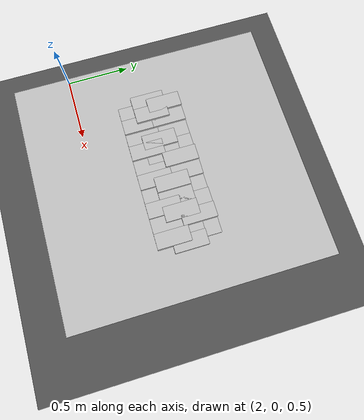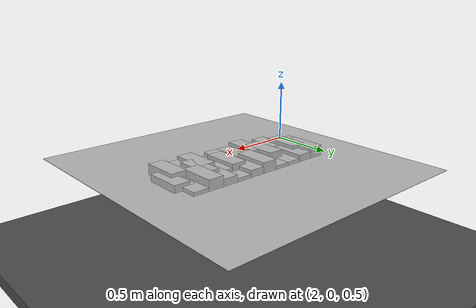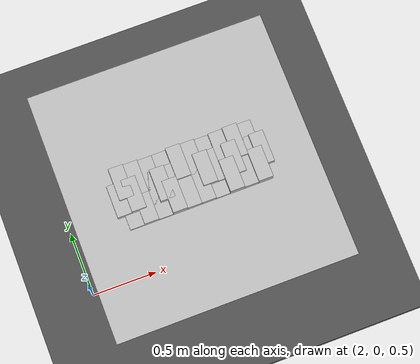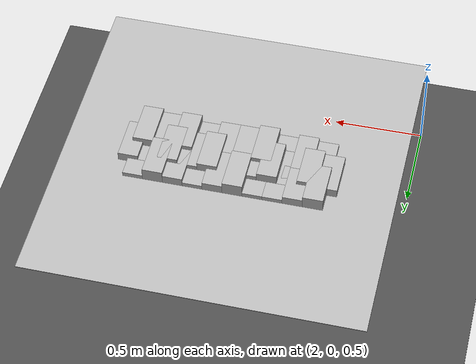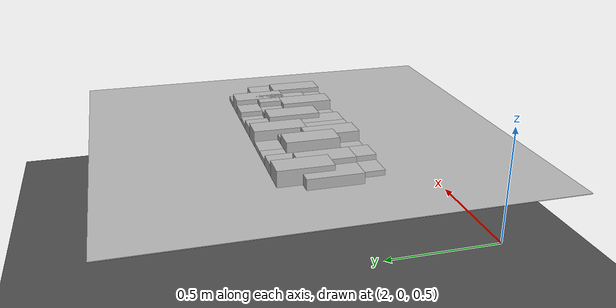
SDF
<sdf version="1.6">
 <world name="default">
  <model name="ground_plane">
   <static>1</static>
   <link name="link">
    <collision name="collision">
     <geometry><plane><normal>0 0 1</normal><size>100 100</size></plane></geometry>
     <surface><friction><ode><mu>100</mu><mu2>50</mu2></ode></friction></surface>
    </collision>
    <visual name="visual">
     <cast_shadows>0</cast_shadows>
     <geometry><plane><normal>0 0 1</normal><size>100 100</size></plane></geometry>
     <material>
      <script><uri>file://media/materials/scripts/gazebo.material</uri><name>Gazebo/Grey</name></script>
     </material>
    </visual>
   </link>
  </model>
  <model name="frc2016_roughterrain_0">
   <link name="link_clone_19">
    <pose>3.10114 0.551241 -0.073164 0 -0 0</pose>
    <inertial>
     <inertia><ixx>nan</ixx><ixy>0</ixy><ixz>0</ixz><iyy>nan</iyy><iyz>0</iyz><izz>nan</izz></inertia>
     <mass>0</mass>
    </inertial>
    <visual name="row1_block4_sm">
     <pose>0.17145 0.1143 0.09698 0 -0 0</pose>
     <geometry><box><size>0.115452 0.257474 0.0254</size></box></geometry>
     <material><shader type="pixel"/></material>
    </visual>
    <visual name="row1_block3_md">
     <pose>0.28575 0.1143 0.10968 0 -0 0</pose>
     <geometry><box><size>0.115452 0.257474 0.0508</size></box></geometry>
     <material><shader type="pixel"/></material>
    </visual>
    <visual name="row1_block5_md">
     <pose>0.05715 0.1143 0.10968 0 -0 0</pose>
     <geometry><box><size>0.115452 0.257474 0.0508</size></box></geometry>
     <material><shader type="pixel"/></material>
    </visual>
    <visual name="platform">
     <pose>0 0 0.08269 0 -0 0</pose>
     <geometry><box><size>1.91826 2.01688 0.003175</size></box></geometry>
     <material><shader type="pixel"/></material>
    </visual>
    <visual name="row1_block1_sm">
     <pose>0.51435 0.1143 0.09698 0 -0 0</pose>
     <geometry><box><size>0.115452 0.257474 0.0254</size></box></geometry>
     <material><shader type="pixel"/></material>
    </visual>
    <visual name="row1_block2_lg">
     <pose>0.40005 0.1143 0.12238 0 -0 0</pose>
     <geometry><box><size>0.115452 0.257474 0.0762</size></box></geometry>
     <material><shader type="pixel"/></material>
    </visual>
    <visual name="row1_block6_lg">
     <pose>-0.05715 0.1143 0.12238 0 -0 0</pose>
     <geometry><box><size>0.115452 0.257474 0.0762</size></box></geometry>
     <material><shader type="pixel"/></material>
    </visual>
    <visual name="row1_block7_sm">
     <pose>-0.17145 0.1143 0.09698 0 -0 0</pose>
     <geometry><box><size>0.115452 0.257474 0.0254</size></box></geometry>
     <material><shader type="pixel"/></material>
    </visual>
    <visual name="row1_block8_sm">
     <pose>-0.28575 0.1143 0.09698 0 -0 0</pose>
     <geometry><box><size>0.115452 0.257474 0.0254</size></box></geometry>
     <material><shader type="pixel"/></material>
    </visual>
    <visual name="row1_block9_md">
     <pose>-0.40005 0.1143 0.10968 0 -0 0</pose>
     <geometry><box><size>0.115452 0.257474 0.0508</size></box></geometry>
     <material><shader type="pixel"/></material>
    </visual>
    <visual name="row1_block10_lg">
     <pose>-0.51435 0.1143 0.12238 0 -0 0</pose>
     <geometry><box><size>0.115452 0.257474 0.0762</size></box></geometry>
     <material><shader type="pixel"/></material>
    </visual>
    <visual name="row2_block1_md">
     <pose>0.5715 0 0.10968 0 -0 0</pose>
     <geometry><box><size>0.115452 0.257474 0.0508</size></box></geometry>
     <material><shader type="pixel"/></material>
    </visual>
    <visual name="row2_block3_lg">
     <pose>0.3429 0 0.12238 0 -0 0</pose>
     <geometry><box><size>0.115452 0.257474 0.0762</size></box></geometry>
     <material><shader type="pixel"/></material>
    </visual>
    <visual name="row2_block2_sm">
     <pose>0.4572 0 0.09698 0 -0 0</pose>
     <geometry><box><size>0.115452 0.257474 0.0254</size></box></geometry>
     <material><shader type="pixel"/></material>
    </visual>
    <visual name="row2_block4_md">
     <pose>0.2286 0 0.10968 0 -0 0</pose>
     <geometry><box><size>0.115452 0.257474 0.0508</size></box></geometry>
     <material><shader type="pixel"/></material>
    </visual>
    <visual name="row2_block5_lg">
     <pose>0.1143 0 0.12238 0 -0 0</pose>
     <geometry><box><size>0.115452 0.257474 0.0762</size></box></geometry>
     <material><shader type="pixel"/></material>
    </visual>
    <visual name="row2_block6_sm">
     <pose>0 0 0.09698 0 -0 0</pose>
     <geometry><box><size>0.115452 0.257474 0.0254</size></box></geometry>
     <material><shader type="pixel"/></material>
    </visual>
    <visual name="row2_block7_md">
     <pose>-0.1143 0 0.10968 0 -0 0</pose>
     <geometry><box><size>0.115452 0.257474 0.0508</size></box></geometry>
     <material><shader type="pixel"/></material>
    </visual>
    <visual name="row2_block8_lg">
     <pose>-0.2286 0 0.12238 0 -0 0</pose>
     <geometry><box><size>0.115452 0.257474 0.0762</size></box></geometry>
     <material><shader type="pixel"/></material>
    </visual>
    <visual name="row2_block9_sm">
     <pose>-0.3429 0 0.09698 0 -0 0</pose>
     <geometry><box><size>0.115452 0.257474 0.0254</size></box></geometry>
     <material><shader type="pixel"/></material>
    </visual>
    <visual name="row2_block10_lg">
     <pose>-0.4572 0 0.12238 0 -0 0</pose>
     <geometry><box><size>0.115452 0.257474 0.0762</size></box></geometry>
     <material><shader type="pixel"/></material>
    </visual>
    <visual name="row2_block11_md">
     <pose>-0.5715 0 0.10968 0 -0 0</pose>
     <geometry><box><size>0.115452 0.257474 0.0508</size></box></geometry>
     <material><shader type="pixel"/></material>
    </visual>
    <visual name="row3_block2_md">
     <pose>0.40005 -0.1143 0.10968 0 -0 0</pose>
     <geometry><box><size>0.115452 0.257474 0.0508</size></box></geometry>
     <material><shader type="pixel"/></material>
    </visual>
    <visual name="row3_block1_lg">
     <pose>0.51435 -0.1143 0.12238 0 -0 0</pose>
     <geometry><box><size>0.115452 0.257474 0.0762</size></box></geometry>
     <material><shader type="pixel"/></material>
    </visual>
    <visual name="row3_block3_lg">
     <pose>0.28575 -0.1143 0.12238 0 -0 0</pose>
     <geometry><box><size>0.115452 0.257474 0.0762</size></box></geometry>
     <material><shader type="pixel"/></material>
    </visual>
    <visual name="row3_block4_sm">
     <pose>0.17145 -0.1143 0.09698 0 -0 0</pose>
     <geometry><box><size>0.115452 0.257474 0.0254</size></box></geometry>
     <material><shader type="pixel"/></material>
    </visual>
    <visual name="row3_block5_md">
     <pose>0.05715 -0.1143 0.10968 0 -0 0</pose>
     <geometry><box><size>0.115452 0.257474 0.0508</size></box></geometry>
     <material><shader type="pixel"/></material>
    </visual>
    <visual name="row3_block6_md">
     <pose>-0.05715 -0.1143 0.10968 0 -0 0</pose>
     <geometry><box><size>0.115452 0.257474 0.0508</size></box></geometry>
     <material><shader type="pixel"/></material>
    </visual>
    <visual name="row3_block8_sm">
     <pose>-0.28575 -0.1143 0.09698 0 -0 0</pose>
     <geometry><box><size>0.115452 0.257474 0.0254</size></box></geometry>
     <material><shader type="pixel"/></material>
    </visual>
    <visual name="row3_block7_lg">
     <pose>-0.17145 -0.1143 0.12238 0 -0 0</pose>
     <geometry><box><size>0.115452 0.257474 0.0762</size></box></geometry>
     <material><shader type="pixel"/></material>
    </visual>
    <visual name="row3_block9_md">
     <pose>-0.40005 -0.1143 0.10968 0 -0 0</pose>
     <geometry><box><size>0.115452 0.257474 0.0508</size></box></geometry>
     <material><shader type="pixel"/></material>
    </visual>
    <visual name="row3_block10_sm">
     <pose>-0.51435 -0.1143 0.09698 0 -0 0</pose>
     <geometry><box><size>0.115452 0.257474 0.0254</size></box></geometry>
     <material><shader type="pixel"/></material>
    </visual>
    <collision name="row2_block5_lg_0">
     <pose>0.1143 0 0.12238 0 -0 0</pose>
     <geometry><box><size>0.115452 0.257474 0.0762</size></box></geometry>
     <surface>
      <friction>
       <ode><mu>1</mu><mu2>1</mu2><fdir1>0 0 0</fdir1><slip1>0</slip1><slip2>0</slip2></ode>
       <torsional>
        <coefficient>1</coefficient>
        <patch_radius>0</patch_radius>
        <surface_radius>0</surface_radius>
        <use_patch_radius>1</use_patch_radius>
        <ode><slip>0</slip></ode>
       </torsional>
      </friction>
      <bounce><restitution_coefficient>0</restitution_coefficient><threshold>1e+06</threshold></bounce>
      <contact>
       <collide_without_contact>0</collide_without_contact>
       <collide_without_contact_bitmask>1</collide_without_contact_bitmask>
       <collide_bitmask>1</collide_bitmask>
       <ode>
        <soft_cfm>0</soft_cfm>
        <soft_erp>0.2</soft_erp>
        <kp>1e+13</kp>
        <kd>1</kd>
        <max_vel>0.01</max_vel>
        <min_depth>0</min_depth>
       </ode>
       <bullet>
        <split_impulse>1</split_impulse>
        <split_impulse_penetration_threshold>-0.01</split_impulse_penetration_threshold>
        <soft_cfm>0</soft_cfm>
        <soft_erp>0.2</soft_erp>
        <kp>1e+13</kp>
        <kd>1</kd>
       </bullet>
      </contact>
     </surface>
    </collision>
    <collision name="platform_0">
     <pose>0 0 0.08269 0 -0 0</pose>
     <geometry><box><size>1.91826 2.01688 0.003175</size></box></geometry>
     <surface>
      <friction>
       <ode><mu>1</mu><mu2>1</mu2><fdir1>0 0 0</fdir1><slip1>0</slip1><slip2>0</slip2></ode>
       <torsional>
        <coefficient>1</coefficient>
        <patch_radius>0</patch_radius>
        <surface_radius>0</surface_radius>
        <use_patch_radius>1</use_patch_radius>
        <ode><slip>0</slip></ode>
       </torsional>
      </friction>
      <bounce><restitution_coefficient>0</restitution_coefficient><threshold>1e+06</threshold></bounce>
      <contact>
       <collide_without_contact>0</collide_without_contact>
       <collide_without_contact_bitmask>1</collide_without_contact_bitmask>
       <collide_bitmask>1</collide_bitmask>
       <ode>
        <soft_cfm>0</soft_cfm>
        <soft_erp>0.2</soft_erp>
        <kp>1e+13</kp>
        <kd>1</kd>
        <max_vel>0.01</max_vel>
        <min_depth>0</min_depth>
       </ode>
       <bullet>
        <split_impulse>1</split_impulse>
        <split_impulse_penetration_threshold>-0.01</split_impulse_penetration_threshold>
        <soft_cfm>0</soft_cfm>
        <soft_erp>0.2</soft_erp>
        <kp>1e+13</kp>
        <kd>1</kd>
       </bullet>
      </contact>
     </surface>
    </collision>
    <collision name="row1_block6_lg_0">
     <pose>-0.05715 0.1143 0.12238 0 -0 0</pose>
     <geometry><box><size>0.115452 0.257474 0.0762</size></box></geometry>
     <surface>
      <friction>
       <ode><mu>1</mu><mu2>1</mu2><fdir1>0 0 0</fdir1><slip1>0</slip1><slip2>0</slip2></ode>
       <torsional>
        <coefficient>1</coefficient>
        <patch_radius>0</patch_radius>
        <surface_radius>0</surface_radius>
        <use_patch_radius>1</use_patch_radius>
        <ode><slip>0</slip></ode>
       </torsional>
      </friction>
      <bounce><restitution_coefficient>0</restitution_coefficient><threshold>1e+06</threshold></bounce>
      <contact>
       <collide_without_contact>0</collide_without_contact>
       <collide_without_contact_bitmask>1</collide_without_contact_bitmask>
       <collide_bitmask>1</collide_bitmask>
       <ode>
        <soft_cfm>0</soft_cfm>
        <soft_erp>0.2</soft_erp>
        <kp>1e+13</kp>
        <kd>1</kd>
        <max_vel>0.01</max_vel>
        <min_depth>0</min_depth>
       </ode>
       <bullet>
        <split_impulse>1</split_impulse>
        <split_impulse_penetration_threshold>-0.01</split_impulse_penetration_threshold>
        <soft_cfm>0</soft_cfm>
        <soft_erp>0.2</soft_erp>
        <kp>1e+13</kp>
        <kd>1</kd>
       </bullet>
      </contact>
     </surface>
    </collision>
    <collision name="row1_block1_sm_0">
     <pose>0.51435 0.1143 0.09698 0 -0 0</pose>
     <geometry><box><size>0.115452 0.257474 0.0254</size></box></geometry>
     <surface>
      <friction>
       <ode><mu>1</mu><mu2>1</mu2><fdir1>0 0 0</fdir1><slip1>0</slip1><slip2>0</slip2></ode>
       <torsional>
        <coefficient>1</coefficient>
        <patch_radius>0</patch_radius>
        <surface_radius>0</surface_radius>
        <use_patch_radius>1</use_patch_radius>
        <ode><slip>0</slip></ode>
       </torsional>
      </friction>
      <bounce><restitution_coefficient>0</restitution_coefficient><threshold>1e+06</threshold></bounce>
      <contact>
       <collide_without_contact>0</collide_without_contact>
       <collide_without_contact_bitmask>1</collide_without_contact_bitmask>
       <collide_bitmask>1</collide_bitmask>
       <ode>
        <soft_cfm>0</soft_cfm>
        <soft_erp>0.2</soft_erp>
        <kp>1e+13</kp>
        <kd>1</kd>
        <max_vel>0.01</max_vel>
        <min_depth>0</min_depth>
       </ode>
       <bullet>
        <split_impulse>1</split_impulse>
        <split_impulse_penetration_threshold>-0.01</split_impulse_penetration_threshold>
        <soft_cfm>0</soft_cfm>
        <soft_erp>0.2</soft_erp>
        <kp>1e+13</kp>
        <kd>1</kd>
       </bullet>
      </contact>
     </surface>
    </collision>
    <collision name="row1_block3_md_0">
     <pose>0.28575 0.1143 0.10968 0 -0 0</pose>
     <geometry><box><size>0.115452 0.257474 0.0508</size></box></geometry>
     <surface>
      <friction>
       <ode><mu>1</mu><mu2>1</mu2><fdir1>0 0 0</fdir1><slip1>0</slip1><slip2>0</slip2></ode>
       <torsional>
        <coefficient>1</coefficient>
        <patch_radius>0</patch_radius>
        <surface_radius>0</surface_radius>
        <use_patch_radius>1</use_patch_radius>
        <ode><slip>0</slip></ode>
       </torsional>
      </friction>
      <bounce><restitution_coefficient>0</restitution_coefficient><threshold>1e+06</threshold></bounce>
      <contact>
       <collide_without_contact>0</collide_without_contact>
       <collide_without_contact_bitmask>1</collide_without_contact_bitmask>
       <collide_bitmask>1</collide_bitmask>
       <ode>
        <soft_cfm>0</soft_cfm>
        <soft_erp>0.2</soft_erp>
        <kp>1e+13</kp>
        <kd>1</kd>
        <max_vel>0.01</max_vel>
        <min_depth>0</min_depth>
       </ode>
       <bullet>
        <split_impulse>1</split_impulse>
        <split_impulse_penetration_threshold>-0.01</split_impulse_penetration_threshold>
        <soft_cfm>0</soft_cfm>
        <soft_erp>0.2</soft_erp>
        <kp>1e+13</kp>
        <kd>1</kd>
       </bullet>
      </contact>
     </surface>
    </collision>
    <collision name="row1_block2_lg_0">
     <pose>0.40005 0.1143 0.12238 0 -0 0</pose>
     <geometry><box><size>0.115452 0.257474 0.0762</size></box></geometry>
     <surface>
      <friction>
       <ode><mu>1</mu><mu2>1</mu2><fdir1>0 0 0</fdir1><slip1>0</slip1><slip2>0</slip2></ode>
       <torsional>
        <coefficient>1</coefficient>
        <patch_radius>0</patch_radius>
        <surface_radius>0</surface_radius>
        <use_patch_radius>1</use_patch_radius>
        <ode><slip>0</slip></ode>
       </torsional>
      </friction>
      <bounce><restitution_coefficient>0</restitution_coefficient><threshold>1e+06</threshold></bounce>
      <contact>
       <collide_without_contact>0</collide_without_contact>
       <collide_without_contact_bitmask>1</collide_without_contact_bitmask>
       <collide_bitmask>1</collide_bitmask>
       <ode>
        <soft_cfm>0</soft_cfm>
        <soft_erp>0.2</soft_erp>
        <kp>1e+13</kp>
        <kd>1</kd>
        <max_vel>0.01</max_vel>
        <min_depth>0</min_depth>
       </ode>
       <bullet>
        <split_impulse>1</split_impulse>
        <split_impulse_penetration_threshold>-0.01</split_impulse_penetration_threshold>
        <soft_cfm>0</soft_cfm>
        <soft_erp>0.2</soft_erp>
        <kp>1e+13</kp>
        <kd>1</kd>
       </bullet>
      </contact>
     </surface>
    </collision>
    <collision name="row1_block5_md_0">
     <pose>0.05715 0.1143 0.10968 0 -0 0</pose>
     <geometry><box><size>0.115452 0.257474 0.0508</size></box></geometry>
     <surface>
      <friction>
       <ode><mu>1</mu><mu2>1</mu2><fdir1>0 0 0</fdir1><slip1>0</slip1><slip2>0</slip2></ode>
       <torsional>
        <coefficient>1</coefficient>
        <patch_radius>0</patch_radius>
        <surface_radius>0</surface_radius>
        <use_patch_radius>1</use_patch_radius>
        <ode><slip>0</slip></ode>
       </torsional>
      </friction>
      <bounce><restitution_coefficient>0</restitution_coefficient><threshold>1e+06</threshold></bounce>
      <contact>
       <collide_without_contact>0</collide_without_contact>
       <collide_without_contact_bitmask>1</collide_without_contact_bitmask>
       <collide_bitmask>1</collide_bitmask>
       <ode>
        <soft_cfm>0</soft_cfm>
        <soft_erp>0.2</soft_erp>
        <kp>1e+13</kp>
        <kd>1</kd>
        <max_vel>0.01</max_vel>
        <min_depth>0</min_depth>
       </ode>
       <bullet>
        <split_impulse>1</split_impulse>
        <split_impulse_penetration_threshold>-0.01</split_impulse_penetration_threshold>
        <soft_cfm>0</soft_cfm>
        <soft_erp>0.2</soft_erp>
        <kp>1e+13</kp>
        <kd>1</kd>
       </bullet>
      </contact>
     </surface>
    </collision>
    <collision name="row1_block4_sm_0">
     <pose>0.17145 0.1143 0.09698 0 -0 0</pose>
     <geometry><box><size>0.115452 0.257474 0.0254</size></box></geometry>
     <surface>
      <friction>
       <ode><mu>1</mu><mu2>1</mu2><fdir1>0 0 0</fdir1><slip1>0</slip1><slip2>0</slip2></ode>
       <torsional>
        <coefficient>1</coefficient>
        <patch_radius>0</patch_radius>
        <surface_radius>0</surface_radius>
        <use_patch_radius>1</use_patch_radius>
        <ode><slip>0</slip></ode>
       </torsional>
      </friction>
      <bounce><restitution_coefficient>0</restitution_coefficient><threshold>1e+06</threshold></bounce>
      <contact>
       <collide_without_contact>0</collide_without_contact>
       <collide_without_contact_bitmask>1</collide_without_contact_bitmask>
       <collide_bitmask>1</collide_bitmask>
       <ode>
        <soft_cfm>0</soft_cfm>
        <soft_erp>0.2</soft_erp>
        <kp>1e+13</kp>
        <kd>1</kd>
        <max_vel>0.01</max_vel>
        <min_depth>0</min_depth>
       </ode>
       <bullet>
        <split_impulse>1</split_impulse>
        <split_impulse_penetration_threshold>-0.01</split_impulse_penetration_threshold>
        <soft_cfm>0</soft_cfm>
        <soft_erp>0.2</soft_erp>
        <kp>1e+13</kp>
        <kd>1</kd>
       </bullet>
      </contact>
     </surface>
    </collision>
    <collision name="row1_block7_sm_0">
     <pose>-0.17145 0.1143 0.09698 0 -0 0</pose>
     <geometry><box><size>0.115452 0.257474 0.0254</size></box></geometry>
     <surface>
      <friction>
       <ode><mu>1</mu><mu2>1</mu2><fdir1>0 0 0</fdir1><slip1>0</slip1><slip2>0</slip2></ode>
       <torsional>
        <coefficient>1</coefficient>
        <patch_radius>0</patch_radius>
        <surface_radius>0</surface_radius>
        <use_patch_radius>1</use_patch_radius>
        <ode><slip>0</slip></ode>
       </torsional>
      </friction>
      <bounce><restitution_coefficient>0</restitution_coefficient><threshold>1e+06</threshold></bounce>
      <contact>
       <collide_without_contact>0</collide_without_contact>
       <collide_without_contact_bitmask>1</collide_without_contact_bitmask>
       <collide_bitmask>1</collide_bitmask>
       <ode>
        <soft_cfm>0</soft_cfm>
        <soft_erp>0.2</soft_erp>
        <kp>1e+13</kp>
        <kd>1</kd>
        <max_vel>0.01</max_vel>
        <min_depth>0</min_depth>
       </ode>
       <bullet>
        <split_impulse>1</split_impulse>
        <split_impulse_penetration_threshold>-0.01</split_impulse_penetration_threshold>
        <soft_cfm>0</soft_cfm>
        <soft_erp>0.2</soft_erp>
        <kp>1e+13</kp>
        <kd>1</kd>
       </bullet>
      </contact>
     </surface>
    </collision>
    <collision name="row1_block8_sm_0">
     <pose>-0.28575 0.1143 0.09698 0 -0 0</pose>
     <geometry><box><size>0.115452 0.257474 0.0254</size></box></geometry>
     <surface>
      <friction>
       <ode><mu>1</mu><mu2>1</mu2><fdir1>0 0 0</fdir1><slip1>0</slip1><slip2>0</slip2></ode>
       <torsional>
        <coefficient>1</coefficient>
        <patch_radius>0</patch_radius>
        <surface_radius>0</surface_radius>
        <use_patch_radius>1</use_patch_radius>
        <ode><slip>0</slip></ode>
       </torsional>
      </friction>
      <bounce><restitution_coefficient>0</restitution_coefficient><threshold>1e+06</threshold></bounce>
      <contact>
       <collide_without_contact>0</collide_without_contact>
       <collide_without_contact_bitmask>1</collide_without_contact_bitmask>
       <collide_bitmask>1</collide_bitmask>
       <ode>
        <soft_cfm>0</soft_cfm>
        <soft_erp>0.2</soft_erp>
        <kp>1e+13</kp>
        <kd>1</kd>
        <max_vel>0.01</max_vel>
        <min_depth>0</min_depth>
       </ode>
       <bullet>
        <split_impulse>1</split_impulse>
        <split_impulse_penetration_threshold>-0.01</split_impulse_penetration_threshold>
        <soft_cfm>0</soft_cfm>
        <soft_erp>0.2</soft_erp>
        <kp>1e+13</kp>
        <kd>1</kd>
       </bullet>
      </contact>
     </surface>
    </collision>
    <collision name="row1_block10_lg_0">
     <pose>-0.51435 0.1143 0.12238 0 -0 0</pose>
     <geometry><box><size>0.115452 0.257474 0.0762</size></box></geometry>
     <surface>
      <friction>
       <ode><mu>1</mu><mu2>1</mu2><fdir1>0 0 0</fdir1><slip1>0</slip1><slip2>0</slip2></ode>
       <torsional>
        <coefficient>1</coefficient>
        <patch_radius>0</patch_radius>
        <surface_radius>0</surface_radius>
        <use_patch_radius>1</use_patch_radius>
        <ode><slip>0</slip></ode>
       </torsional>
      </friction>
      <bounce><restitution_coefficient>0</restitution_coefficient><threshold>1e+06</threshold></bounce>
      <contact>
       <collide_without_contact>0</collide_without_contact>
       <collide_without_contact_bitmask>1</collide_without_contact_bitmask>
       <collide_bitmask>1</collide_bitmask>
       <ode>
        <soft_cfm>0</soft_cfm>
        <soft_erp>0.2</soft_erp>
        <kp>1e+13</kp>
        <kd>1</kd>
        <max_vel>0.01</max_vel>
        <min_depth>0</min_depth>
       </ode>
       <bullet>
        <split_impulse>1</split_impulse>
        <split_impulse_penetration_threshold>-0.01</split_impulse_penetration_threshold>
        <soft_cfm>0</soft_cfm>
        <soft_erp>0.2</soft_erp>
        <kp>1e+13</kp>
        <kd>1</kd>
       </bullet>
      </contact>
     </surface>
    </collision>
    <collision name="row1_block9_md_0">
     <pose>-0.40005 0.1143 0.10968 0 -0 0</pose>
     <geometry><box><size>0.115452 0.257474 0.0508</size></box></geometry>
     <surface>
      <friction>
       <ode><mu>1</mu><mu2>1</mu2><fdir1>0 0 0</fdir1><slip1>0</slip1><slip2>0</slip2></ode>
       <torsional>
        <coefficient>1</coefficient>
        <patch_radius>0</patch_radius>
        <surface_radius>0</surface_radius>
        <use_patch_radius>1</use_patch_radius>
        <ode><slip>0</slip></ode>
       </torsional>
      </friction>
      <bounce><restitution_coefficient>0</restitution_coefficient><threshold>1e+06</threshold></bounce>
      <contact>
       <collide_without_contact>0</collide_without_contact>
       <collide_without_contact_bitmask>1</collide_without_contact_bitmask>
       <collide_bitmask>1</collide_bitmask>
       <ode>
        <soft_cfm>0</soft_cfm>
        <soft_erp>0.2</soft_erp>
        <kp>1e+13</kp>
        <kd>1</kd>
        <max_vel>0.01</max_vel>
        <min_depth>0</min_depth>
       </ode>
       <bullet>
        <split_impulse>1</split_impulse>
        <split_impulse_penetration_threshold>-0.01</split_impulse_penetration_threshold>
        <soft_cfm>0</soft_cfm>
        <soft_erp>0.2</soft_erp>
        <kp>1e+13</kp>
        <kd>1</kd>
       </bullet>
      </contact>
     </surface>
    </collision>
    <collision name="row2_block1_md_0">
     <pose>0.5715 0 0.10968 0 -0 0</pose>
     <geometry><box><size>0.115452 0.257474 0.0508</size></box></geometry>
     <surface>
      <friction>
       <ode><mu>1</mu><mu2>1</mu2><fdir1>0 0 0</fdir1><slip1>0</slip1><slip2>0</slip2></ode>
       <torsional>
        <coefficient>1</coefficient>
        <patch_radius>0</patch_radius>
        <surface_radius>0</surface_radius>
        <use_patch_radius>1</use_patch_radius>
        <ode><slip>0</slip></ode>
       </torsional>
      </friction>
      <bounce><restitution_coefficient>0</restitution_coefficient><threshold>1e+06</threshold></bounce>
      <contact>
       <collide_without_contact>0</collide_without_contact>
       <collide_without_contact_bitmask>1</collide_without_contact_bitmask>
       <collide_bitmask>1</collide_bitmask>
       <ode>
        <soft_cfm>0</soft_cfm>
        <soft_erp>0.2</soft_erp>
        <kp>1e+13</kp>
        <kd>1</kd>
        <max_vel>0.01</max_vel>
        <min_depth>0</min_depth>
       </ode>
       <bullet>
        <split_impulse>1</split_impulse>
        <split_impulse_penetration_threshold>-0.01</split_impulse_penetration_threshold>
        <soft_cfm>0</soft_cfm>
        <soft_erp>0.2</soft_erp>
        <kp>1e+13</kp>
        <kd>1</kd>
       </bullet>
      </contact>
     </surface>
    </collision>
    <collision name="row2_block2_sm_0">
     <pose>0.4572 0 0.09698 0 -0 0</pose>
     <geometry><box><size>0.115452 0.257474 0.0254</size></box></geometry>
     <surface>
      <friction>
       <ode><mu>1</mu><mu2>1</mu2><fdir1>0 0 0</fdir1><slip1>0</slip1><slip2>0</slip2></ode>
       <torsional>
        <coefficient>1</coefficient>
        <patch_radius>0</patch_radius>
        <surface_radius>0</surface_radius>
        <use_patch_radius>1</use_patch_radius>
        <ode><slip>0</slip></ode>
       </torsional>
      </friction>
      <bounce><restitution_coefficient>0</restitution_coefficient><threshold>1e+06</threshold></bounce>
      <contact>
       <collide_without_contact>0</collide_without_contact>
       <collide_without_contact_bitmask>1</collide_without_contact_bitmask>
       <collide_bitmask>1</collide_bitmask>
       <ode>
        <soft_cfm>0</soft_cfm>
        <soft_erp>0.2</soft_erp>
        <kp>1e+13</kp>
        <kd>1</kd>
        <max_vel>0.01</max_vel>
        <min_depth>0</min_depth>
       </ode>
       <bullet>
        <split_impulse>1</split_impulse>
        <split_impulse_penetration_threshold>-0.01</split_impulse_penetration_threshold>
        <soft_cfm>0</soft_cfm>
        <soft_erp>0.2</soft_erp>
        <kp>1e+13</kp>
        <kd>1</kd>
       </bullet>
      </contact>
     </surface>
    </collision>
    <collision name="row2_block4_md_0">
     <pose>0.2286 0 0.10968 0 -0 0</pose>
     <geometry><box><size>0.115452 0.257474 0.0508</size></box></geometry>
     <surface>
      <friction>
       <ode><mu>1</mu><mu2>1</mu2><fdir1>0 0 0</fdir1><slip1>0</slip1><slip2>0</slip2></ode>
       <torsional>
        <coefficient>1</coefficient>
        <patch_radius>0</patch_radius>
        <surface_radius>0</surface_radius>
        <use_patch_radius>1</use_patch_radius>
        <ode><slip>0</slip></ode>
       </torsional>
      </friction>
      <bounce><restitution_coefficient>0</restitution_coefficient><threshold>1e+06</threshold></bounce>
      <contact>
       <collide_without_contact>0</collide_without_contact>
       <collide_without_contact_bitmask>1</collide_without_contact_bitmask>
       <collide_bitmask>1</collide_bitmask>
       <ode>
        <soft_cfm>0</soft_cfm>
        <soft_erp>0.2</soft_erp>
        <kp>1e+13</kp>
        <kd>1</kd>
        <max_vel>0.01</max_vel>
        <min_depth>0</min_depth>
       </ode>
       <bullet>
        <split_impulse>1</split_impulse>
        <split_impulse_penetration_threshold>-0.01</split_impulse_penetration_threshold>
        <soft_cfm>0</soft_cfm>
        <soft_erp>0.2</soft_erp>
        <kp>1e+13</kp>
        <kd>1</kd>
       </bullet>
      </contact>
     </surface>
    </collision>
    <collision name="row2_block3_lg_0">
     <pose>0.3429 0 0.12238 0 -0 0</pose>
     <geometry><box><size>0.115452 0.257474 0.0762</size></box></geometry>
     <surface>
      <friction>
       <ode><mu>1</mu><mu2>1</mu2><fdir1>0 0 0</fdir1><slip1>0</slip1><slip2>0</slip2></ode>
       <torsional>
        <coefficient>1</coefficient>
        <patch_radius>0</patch_radius>
        <surface_radius>0</surface_radius>
        <use_patch_radius>1</use_patch_radius>
        <ode><slip>0</slip></ode>
       </torsional>
      </friction>
      <bounce><restitution_coefficient>0</restitution_coefficient><threshold>1e+06</threshold></bounce>
      <contact>
       <collide_without_contact>0</collide_without_contact>
       <collide_without_contact_bitmask>1</collide_without_contact_bitmask>
       <collide_bitmask>1</collide_bitmask>
       <ode>
        <soft_cfm>0</soft_cfm>
        <soft_erp>0.2</soft_erp>
        <kp>1e+13</kp>
        <kd>1</kd>
        <max_vel>0.01</max_vel>
        <min_depth>0</min_depth>
       </ode>
       <bullet>
        <split_impulse>1</split_impulse>
        <split_impulse_penetration_threshold>-0.01</split_impulse_penetration_threshold>
        <soft_cfm>0</soft_cfm>
        <soft_erp>0.2</soft_erp>
        <kp>1e+13</kp>
        <kd>1</kd>
       </bullet>
      </contact>
     </surface>
    </collision>
    <collision name="row2_block6_sm_0">
     <pose>0 0 0.09698 0 -0 0</pose>
     <geometry><box><size>0.115452 0.257474 0.0254</size></box></geometry>
     <surface>
      <friction>
       <ode><mu>1</mu><mu2>1</mu2><fdir1>0 0 0</fdir1><slip1>0</slip1><slip2>0</slip2></ode>
       <torsional>
        <coefficient>1</coefficient>
        <patch_radius>0</patch_radius>
        <surface_radius>0</surface_radius>
        <use_patch_radius>1</use_patch_radius>
        <ode><slip>0</slip></ode>
       </torsional>
      </friction>
      <bounce><restitution_coefficient>0</restitution_coefficient><threshold>1e+06</threshold></bounce>
      <contact>
       <collide_without_contact>0</collide_without_contact>
       <collide_without_contact_bitmask>1</collide_without_contact_bitmask>
       <collide_bitmask>1</collide_bitmask>
       <ode>
        <soft_cfm>0</soft_cfm>
        <soft_erp>0.2</soft_erp>
        <kp>1e+13</kp>
        <kd>1</kd>
        <max_vel>0.01</max_vel>
        <min_depth>0</min_depth>
       </ode>
       <bullet>
        <split_impulse>1</split_impulse>
        <split_impulse_penetration_threshold>-0.01</split_impulse_penetration_threshold>
        <soft_cfm>0</soft_cfm>
        <soft_erp>0.2</soft_erp>
        <kp>1e+13</kp>
        <kd>1</kd>
       </bullet>
      </contact>
     </surface>
    </collision>
    <collision name="row2_block7_md_0">
     <pose>-0.1143 0 0.10968 0 -0 0</pose>
     <geometry><box><size>0.115452 0.257474 0.0508</size></box></geometry>
     <surface>
      <friction>
       <ode><mu>1</mu><mu2>1</mu2><fdir1>0 0 0</fdir1><slip1>0</slip1><slip2>0</slip2></ode>
       <torsional>
        <coefficient>1</coefficient>
        <patch_radius>0</patch_radius>
        <surface_radius>0</surface_radius>
        <use_patch_radius>1</use_patch_radius>
        <ode><slip>0</slip></ode>
       </torsional>
      </friction>
      <bounce><restitution_coefficient>0</restitution_coefficient><threshold>1e+06</threshold></bounce>
      <contact>
       <collide_without_contact>0</collide_without_contact>
       <collide_without_contact_bitmask>1</collide_without_contact_bitmask>
       <collide_bitmask>1</collide_bitmask>
       <ode>
        <soft_cfm>0</soft_cfm>
        <soft_erp>0.2</soft_erp>
        <kp>1e+13</kp>
        <kd>1</kd>
        <max_vel>0.01</max_vel>
        <min_depth>0</min_depth>
       </ode>
       <bullet>
        <split_impulse>1</split_impulse>
        <split_impulse_penetration_threshold>-0.01</split_impulse_penetration_threshold>
        <soft_cfm>0</soft_cfm>
        <soft_erp>0.2</soft_erp>
        <kp>1e+13</kp>
        <kd>1</kd>
       </bullet>
      </contact>
     </surface>
    </collision>
    <collision name="row2_block8_lg_0">
     <pose>-0.2286 0 0.12238 0 -0 0</pose>
     <geometry><box><size>0.115452 0.257474 0.0762</size></box></geometry>
     <surface>
      <friction>
       <ode><mu>1</mu><mu2>1</mu2><fdir1>0 0 0</fdir1><slip1>0</slip1><slip2>0</slip2></ode>
       <torsional>
        <coefficient>1</coefficient>
        <patch_radius>0</patch_radius>
        <surface_radius>0</surface_radius>
        <use_patch_radius>1</use_patch_radius>
        <ode><slip>0</slip></ode>
       </torsional>
      </friction>
      <bounce><restitution_coefficient>0</restitution_coefficient><threshold>1e+06</threshold></bounce>
      <contact>
       <collide_without_contact>0</collide_without_contact>
       <collide_without_contact_bitmask>1</collide_without_contact_bitmask>
       <collide_bitmask>1</collide_bitmask>
       <ode>
        <soft_cfm>0</soft_cfm>
        <soft_erp>0.2</soft_erp>
        <kp>1e+13</kp>
        <kd>1</kd>
        <max_vel>0.01</max_vel>
        <min_depth>0</min_depth>
       </ode>
       <bullet>
        <split_impulse>1</split_impulse>
        <split_impulse_penetration_threshold>-0.01</split_impulse_penetration_threshold>
        <soft_cfm>0</soft_cfm>
        <soft_erp>0.2</soft_erp>
        <kp>1e+13</kp>
        <kd>1</kd>
       </bullet>
      </contact>
     </surface>
    </collision>
    <collision name="row2_block10_lg_0">
     <pose>-0.4572 0 0.12238 0 -0 0</pose>
     <geometry><box><size>0.115452 0.257474 0.0762</size></box></geometry>
     <surface>
      <friction>
       <ode><mu>1</mu><mu2>1</mu2><fdir1>0 0 0</fdir1><slip1>0</slip1><slip2>0</slip2></ode>
       <torsional>
        <coefficient>1</coefficient>
        <patch_radius>0</patch_radius>
        <surface_radius>0</surface_radius>
        <use_patch_radius>1</use_patch_radius>
        <ode><slip>0</slip></ode>
       </torsional>
      </friction>
      <bounce><restitution_coefficient>0</restitution_coefficient><threshold>1e+06</threshold></bounce>
      <contact>
       <collide_without_contact>0</collide_without_contact>
       <collide_without_contact_bitmask>1</collide_without_contact_bitmask>
       <collide_bitmask>1</collide_bitmask>
       <ode>
        <soft_cfm>0</soft_cfm>
        <soft_erp>0.2</soft_erp>
        <kp>1e+13</kp>
        <kd>1</kd>
        <max_vel>0.01</max_vel>
        <min_depth>0</min_depth>
       </ode>
       <bullet>
        <split_impulse>1</split_impulse>
        <split_impulse_penetration_threshold>-0.01</split_impulse_penetration_threshold>
        <soft_cfm>0</soft_cfm>
        <soft_erp>0.2</soft_erp>
        <kp>1e+13</kp>
        <kd>1</kd>
       </bullet>
      </contact>
     </surface>
    </collision>
    <collision name="row2_block9_sm_0">
     <pose>-0.3429 0 0.09698 0 -0 0</pose>
     <geometry><box><size>0.115452 0.257474 0.0254</size></box></geometry>
     <surface>
      <friction>
       <ode><mu>1</mu><mu2>1</mu2><fdir1>0 0 0</fdir1><slip1>0</slip1><slip2>0</slip2></ode>
       <torsional>
        <coefficient>1</coefficient>
        <patch_radius>0</patch_radius>
        <surface_radius>0</surface_radius>
        <use_patch_radius>1</use_patch_radius>
        <ode><slip>0</slip></ode>
       </torsional>
      </friction>
      <bounce><restitution_coefficient>0</restitution_coefficient><threshold>1e+06</threshold></bounce>
      <contact>
       <collide_without_contact>0</collide_without_contact>
       <collide_without_contact_bitmask>1</collide_without_contact_bitmask>
       <collide_bitmask>1</collide_bitmask>
       <ode>
        <soft_cfm>0</soft_cfm>
        <soft_erp>0.2</soft_erp>
        <kp>1e+13</kp>
        <kd>1</kd>
        <max_vel>0.01</max_vel>
        <min_depth>0</min_depth>
       </ode>
       <bullet>
        <split_impulse>1</split_impulse>
        <split_impulse_penetration_threshold>-0.01</split_impulse_penetration_threshold>
        <soft_cfm>0</soft_cfm>
        <soft_erp>0.2</soft_erp>
        <kp>1e+13</kp>
        <kd>1</kd>
       </bullet>
      </contact>
     </surface>
    </collision>
    <collision name="row2_block11_md_0">
     <pose>-0.5715 0 0.10968 0 -0 0</pose>
     <geometry><box><size>0.115452 0.257474 0.0508</size></box></geometry>
     <surface>
      <friction>
       <ode><mu>1</mu><mu2>1</mu2><fdir1>0 0 0</fdir1><slip1>0</slip1><slip2>0</slip2></ode>
       <torsional>
        <coefficient>1</coefficient>
        <patch_radius>0</patch_radius>
        <surface_radius>0</surface_radius>
        <use_patch_radius>1</use_patch_radius>
        <ode><slip>0</slip></ode>
       </torsional>
      </friction>
      <bounce><restitution_coefficient>0</restitution_coefficient><threshold>1e+06</threshold></bounce>
      <contact>
       <collide_without_contact>0</collide_without_contact>
       <collide_without_contact_bitmask>1</collide_without_contact_bitmask>
       <collide_bitmask>1</collide_bitmask>
       <ode>
        <soft_cfm>0</soft_cfm>
        <soft_erp>0.2</soft_erp>
        <kp>1e+13</kp>
        <kd>1</kd>
        <max_vel>0.01</max_vel>
        <min_depth>0</min_depth>
       </ode>
       <bullet>
        <split_impulse>1</split_impulse>
        <split_impulse_penetration_threshold>-0.01</split_impulse_penetration_threshold>
        <soft_cfm>0</soft_cfm>
        <soft_erp>0.2</soft_erp>
        <kp>1e+13</kp>
        <kd>1</kd>
       </bullet>
      </contact>
     </surface>
    </collision>
    <collision name="row3_block2_md_0">
     <pose>0.40005 -0.1143 0.10968 0 -0 0</pose>
     <geometry><box><size>0.115452 0.257474 0.0508</size></box></geometry>
     <surface>
      <friction>
       <ode><mu>1</mu><mu2>1</mu2><fdir1>0 0 0</fdir1><slip1>0</slip1><slip2>0</slip2></ode>
       <torsional>
        <coefficient>1</coefficient>
        <patch_radius>0</patch_radius>
        <surface_radius>0</surface_radius>
        <use_patch_radius>1</use_patch_radius>
        <ode><slip>0</slip></ode>
       </torsional>
      </friction>
      <bounce><restitution_coefficient>0</restitution_coefficient><threshold>1e+06</threshold></bounce>
      <contact>
       <collide_without_contact>0</collide_without_contact>
       <collide_without_contact_bitmask>1</collide_without_contact_bitmask>
       <collide_bitmask>1</collide_bitmask>
       <ode>
        <soft_cfm>0</soft_cfm>
        <soft_erp>0.2</soft_erp>
        <kp>1e+13</kp>
        <kd>1</kd>
        <max_vel>0.01</max_vel>
        <min_depth>0</min_depth>
       </ode>
       <bullet>
        <split_impulse>1</split_impulse>
        <split_impulse_penetration_threshold>-0.01</split_impulse_penetration_threshold>
        <soft_cfm>0</soft_cfm>
        <soft_erp>0.2</soft_erp>
        <kp>1e+13</kp>
        <kd>1</kd>
       </bullet>
      </contact>
     </surface>
    </collision>
    <collision name="row3_block3_lg_0">
     <pose>0.28575 -0.1143 0.12238 0 -0 0</pose>
     <geometry><box><size>0.115452 0.257474 0.0762</size></box></geometry>
     <surface>
      <friction>
       <ode><mu>1</mu><mu2>1</mu2><fdir1>0 0 0</fdir1><slip1>0</slip1><slip2>0</slip2></ode>
       <torsional>
        <coefficient>1</coefficient>
        <patch_radius>0</patch_radius>
        <surface_radius>0</surface_radius>
        <use_patch_radius>1</use_patch_radius>
        <ode><slip>0</slip></ode>
       </torsional>
      </friction>
      <bounce><restitution_coefficient>0</restitution_coefficient><threshold>1e+06</threshold></bounce>
      <contact>
       <collide_without_contact>0</collide_without_contact>
       <collide_without_contact_bitmask>1</collide_without_contact_bitmask>
       <collide_bitmask>1</collide_bitmask>
       <ode>
        <soft_cfm>0</soft_cfm>
        <soft_erp>0.2</soft_erp>
        <kp>1e+13</kp>
        <kd>1</kd>
        <max_vel>0.01</max_vel>
        <min_depth>0</min_depth>
       </ode>
       <bullet>
        <split_impulse>1</split_impulse>
        <split_impulse_penetration_threshold>-0.01</split_impulse_penetration_threshold>
        <soft_cfm>0</soft_cfm>
        <soft_erp>0.2</soft_erp>
        <kp>1e+13</kp>
        <kd>1</kd>
       </bullet>
      </contact>
     </surface>
    </collision>
    <collision name="row3_block1_lg_0">
     <pose>0.51435 -0.1143 0.12238 0 -0 0</pose>
     <geometry><box><size>0.115452 0.257474 0.0762</size></box></geometry>
     <surface>
      <friction>
       <ode><mu>1</mu><mu2>1</mu2><fdir1>0 0 0</fdir1><slip1>0</slip1><slip2>0</slip2></ode>
       <torsional>
        <coefficient>1</coefficient>
        <patch_radius>0</patch_radius>
        <surface_radius>0</surface_radius>
        <use_patch_radius>1</use_patch_radius>
        <ode><slip>0</slip></ode>
       </torsional>
      </friction>
      <bounce><restitution_coefficient>0</restitution_coefficient><threshold>1e+06</threshold></bounce>
      <contact>
       <collide_without_contact>0</collide_without_contact>
       <collide_without_contact_bitmask>1</collide_without_contact_bitmask>
       <collide_bitmask>1</collide_bitmask>
       <ode>
        <soft_cfm>0</soft_cfm>
        <soft_erp>0.2</soft_erp>
        <kp>1e+13</kp>
        <kd>1</kd>
        <max_vel>0.01</max_vel>
        <min_depth>0</min_depth>
       </ode>
       <bullet>
        <split_impulse>1</split_impulse>
        <split_impulse_penetration_threshold>-0.01</split_impulse_penetration_threshold>
        <soft_cfm>0</soft_cfm>
        <soft_erp>0.2</soft_erp>
        <kp>1e+13</kp>
        <kd>1</kd>
       </bullet>
      </contact>
     </surface>
    </collision>
    <collision name="row3_block4_sm_0">
     <pose>0.17145 -0.1143 0.09698 0 -0 0</pose>
     <geometry><box><size>0.115452 0.257474 0.0254</size></box></geometry>
     <surface>
      <friction>
       <ode><mu>1</mu><mu2>1</mu2><fdir1>0 0 0</fdir1><slip1>0</slip1><slip2>0</slip2></ode>
       <torsional>
        <coefficient>1</coefficient>
        <patch_radius>0</patch_radius>
        <surface_radius>0</surface_radius>
        <use_patch_radius>1</use_patch_radius>
        <ode><slip>0</slip></ode>
       </torsional>
      </friction>
      <bounce><restitution_coefficient>0</restitution_coefficient><threshold>1e+06</threshold></bounce>
      <contact>
       <collide_without_contact>0</collide_without_contact>
       <collide_without_contact_bitmask>1</collide_without_contact_bitmask>
       <collide_bitmask>1</collide_bitmask>
       <ode>
        <soft_cfm>0</soft_cfm>
        <soft_erp>0.2</soft_erp>
        <kp>1e+13</kp>
        <kd>1</kd>
        <max_vel>0.01</max_vel>
        <min_depth>0</min_depth>
       </ode>
       <bullet>
        <split_impulse>1</split_impulse>
        <split_impulse_penetration_threshold>-0.01</split_impulse_penetration_threshold>
        <soft_cfm>0</soft_cfm>
        <soft_erp>0.2</soft_erp>
        <kp>1e+13</kp>
        <kd>1</kd>
       </bullet>
      </contact>
     </surface>
    </collision>
    <collision name="row3_block5_md_0">
     <pose>0.05715 -0.1143 0.10968 0 -0 0</pose>
     <geometry><box><size>0.115452 0.257474 0.0508</size></box></geometry>
     <surface>
      <friction>
       <ode><mu>1</mu><mu2>1</mu2><fdir1>0 0 0</fdir1><slip1>0</slip1><slip2>0</slip2></ode>
       <torsional>
        <coefficient>1</coefficient>
        <patch_radius>0</patch_radius>
        <surface_radius>0</surface_radius>
        <use_patch_radius>1</use_patch_radius>
        <ode><slip>0</slip></ode>
       </torsional>
      </friction>
      <bounce><restitution_coefficient>0</restitution_coefficient><threshold>1e+06</threshold></bounce>
      <contact>
       <collide_without_contact>0</collide_without_contact>
       <collide_without_contact_bitmask>1</collide_without_contact_bitmask>
       <collide_bitmask>1</collide_bitmask>
       <ode>
        <soft_cfm>0</soft_cfm>
        <soft_erp>0.2</soft_erp>
        <kp>1e+13</kp>
        <kd>1</kd>
        <max_vel>0.01</max_vel>
        <min_depth>0</min_depth>
       </ode>
       <bullet>
        <split_impulse>1</split_impulse>
        <split_impulse_penetration_threshold>-0.01</split_impulse_penetration_threshold>
        <soft_cfm>0</soft_cfm>
        <soft_erp>0.2</soft_erp>
        <kp>1e+13</kp>
        <kd>1</kd>
       </bullet>
      </contact>
     </surface>
    </collision>
    <collision name="row3_block7_lg_0">
     <pose>-0.17145 -0.1143 0.12238 0 -0 0</pose>
     <geometry><box><size>0.115452 0.257474 0.0762</size></box></geometry>
     <surface>
      <friction>
       <ode><mu>1</mu><mu2>1</mu2><fdir1>0 0 0</fdir1><slip1>0</slip1><slip2>0</slip2></ode>
       <torsional>
        <coefficient>1</coefficient>
        <patch_radius>0</patch_radius>
        <surface_radius>0</surface_radius>
        <use_patch_radius>1</use_patch_radius>
        <ode><slip>0</slip></ode>
       </torsional>
      </friction>
      <bounce><restitution_coefficient>0</restitution_coefficient><threshold>1e+06</threshold></bounce>
      <contact>
       <collide_without_contact>0</collide_without_contact>
       <collide_without_contact_bitmask>1</collide_without_contact_bitmask>
       <collide_bitmask>1</collide_bitmask>
       <ode>
        <soft_cfm>0</soft_cfm>
        <soft_erp>0.2</soft_erp>
        <kp>1e+13</kp>
        <kd>1</kd>
        <max_vel>0.01</max_vel>
        <min_depth>0</min_depth>
       </ode>
       <bullet>
        <split_impulse>1</split_impulse>
        <split_impulse_penetration_threshold>-0.01</split_impulse_penetration_threshold>
        <soft_cfm>0</soft_cfm>
        <soft_erp>0.2</soft_erp>
        <kp>1e+13</kp>
        <kd>1</kd>
       </bullet>
      </contact>
     </surface>
    </collision>
    <collision name="row3_block6_md_0">
     <pose>-0.05715 -0.1143 0.10968 0 -0 0</pose>
     <geometry><box><size>0.115452 0.257474 0.0508</size></box></geometry>
     <surface>
      <friction>
       <ode><mu>1</mu><mu2>1</mu2><fdir1>0 0 0</fdir1><slip1>0</slip1><slip2>0</slip2></ode>
       <torsional>
        <coefficient>1</coefficient>
        <patch_radius>0</patch_radius>
        <surface_radius>0</surface_radius>
        <use_patch_radius>1</use_patch_radius>
        <ode><slip>0</slip></ode>
       </torsional>
      </friction>
      <bounce><restitution_coefficient>0</restitution_coefficient><threshold>1e+06</threshold></bounce>
      <contact>
       <collide_without_contact>0</collide_without_contact>
       <collide_without_contact_bitmask>1</collide_without_contact_bitmask>
       <collide_bitmask>1</collide_bitmask>
       <ode>
        <soft_cfm>0</soft_cfm>
        <soft_erp>0.2</soft_erp>
        <kp>1e+13</kp>
        <kd>1</kd>
        <max_vel>0.01</max_vel>
        <min_depth>0</min_depth>
       </ode>
       <bullet>
        <split_impulse>1</split_impulse>
        <split_impulse_penetration_threshold>-0.01</split_impulse_penetration_threshold>
        <soft_cfm>0</soft_cfm>
        <soft_erp>0.2</soft_erp>
        <kp>1e+13</kp>
        <kd>1</kd>
       </bullet>
      </contact>
     </surface>
    </collision>
    <collision name="row3_block8_sm_0">
     <pose>-0.28575 -0.1143 0.09698 0 -0 0</pose>
     <geometry><box><size>0.115452 0.257474 0.0254</size></box></geometry>
     <surface>
      <friction>
       <ode><mu>1</mu><mu2>1</mu2><fdir1>0 0 0</fdir1><slip1>0</slip1><slip2>0</slip2></ode>
       <torsional>
        <coefficient>1</coefficient>
        <patch_radius>0</patch_radius>
        <surface_radius>0</surface_radius>
        <use_patch_radius>1</use_patch_radius>
        <ode><slip>0</slip></ode>
       </torsional>
      </friction>
      <bounce><restitution_coefficient>0</restitution_coefficient><threshold>1e+06</threshold></bounce>
      <contact>
       <collide_without_contact>0</collide_without_contact>
       <collide_without_contact_bitmask>1</collide_without_contact_bitmask>
       <collide_bitmask>1</collide_bitmask>
       <ode>
        <soft_cfm>0</soft_cfm>
        <soft_erp>0.2</soft_erp>
        <kp>1e+13</kp>
        <kd>1</kd>
        <max_vel>0.01</max_vel>
        <min_depth>0</min_depth>
       </ode>
       <bullet>
        <split_impulse>1</split_impulse>
        <split_impulse_penetration_threshold>-0.01</split_impulse_penetration_threshold>
        <soft_cfm>0</soft_cfm>
        <soft_erp>0.2</soft_erp>
        <kp>1e+13</kp>
        <kd>1</kd>
       </bullet>
      </contact>
     </surface>
    </collision>
    <collision name="row3_block10_sm_0">
     <pose>-0.51435 -0.1143 0.09698 0 -0 0</pose>
     <geometry><box><size>0.115452 0.257474 0.0254</size></box></geometry>
     <surface>
      <friction>
       <ode><mu>1</mu><mu2>1</mu2><fdir1>0 0 0</fdir1><slip1>0</slip1><slip2>0</slip2></ode>
       <torsional>
        <coefficient>1</coefficient>
        <patch_radius>0</patch_radius>
        <surface_radius>0</surface_radius>
        <use_patch_radius>1</use_patch_radius>
        <ode><slip>0</slip></ode>
       </torsional>
      </friction>
      <bounce><restitution_coefficient>0</restitution_coefficient><threshold>1e+06</threshold></bounce>
      <contact>
       <collide_without_contact>0</collide_without_contact>
       <collide_without_contact_bitmask>1</collide_without_contact_bitmask>
       <collide_bitmask>1</collide_bitmask>
       <ode>
        <soft_cfm>0</soft_cfm>
        <soft_erp>0.2</soft_erp>
        <kp>1e+13</kp>
        <kd>1</kd>
        <max_vel>0.01</max_vel>
        <min_depth>0</min_depth>
       </ode>
       <bullet>
        <split_impulse>1</split_impulse>
        <split_impulse_penetration_threshold>-0.01</split_impulse_penetration_threshold>
        <soft_cfm>0</soft_cfm>
        <soft_erp>0.2</soft_erp>
        <kp>1e+13</kp>
        <kd>1</kd>
       </bullet>
      </contact>
     </surface>
    </collision>
    <collision name="row3_block9_md_0">
     <pose>-0.40005 -0.1143 0.10968 0 -0 0</pose>
     <geometry><box><size>0.115452 0.257474 0.0508</size></box></geometry>
     <surface>
      <friction>
       <ode><mu>1</mu><mu2>1</mu2><fdir1>0 0 0</fdir1><slip1>0</slip1><slip2>0</slip2></ode>
       <torsional>
        <coefficient>1</coefficient>
        <patch_radius>0</patch_radius>
        <surface_radius>0</surface_radius>
        <use_patch_radius>1</use_patch_radius>
        <ode><slip>0</slip></ode>
       </torsional>
      </friction>
      <bounce><restitution_coefficient>0</restitution_coefficient><threshold>1e+06</threshold></bounce>
      <contact>
       <collide_without_contact>0</collide_without_contact>
       <collide_without_contact_bitmask>1</collide_without_contact_bitmask>
       <collide_bitmask>1</collide_bitmask>
       <ode>
        <soft_cfm>0</soft_cfm>
        <soft_erp>0.2</soft_erp>
        <kp>1e+13</kp>
        <kd>1</kd>
        <max_vel>0.01</max_vel>
        <min_depth>0</min_depth>
       </ode>
       <bullet>
        <split_impulse>1</split_impulse>
        <split_impulse_penetration_threshold>-0.01</split_impulse_penetration_threshold>
        <soft_cfm>0</soft_cfm>
        <soft_erp>0.2</soft_erp>
        <kp>1e+13</kp>
        <kd>1</kd>
       </bullet>
      </contact>
     </surface>
    </collision>
   </link>
   <static>1</static>
   <pose>-0.10114 0.027351 0.636987 0 -0 0</pose>
  </model>
  <model name="asphalt_plane">
   <static>1</static>
   <link name="link">
    <collision name="collision"><geometry><box><size>20 20 0.1</size></box></geometry></collision>
    <visual name="visual">
     <cast_shadows>0</cast_shadows>
     <geometry><box><size>20 20 0.1</size></box></geometry>
     <material>
      <script>
       <uri>model://asphalt_plane/materials/scripts</uri>
       <uri>model://asphalt_plane/materials/textures</uri>
       <name>vrc/asphalt</name>
      </script>
     </material>
    </visual>
   </link>
   <pose>0.537328 0.29075 -0.013118 0 -0 0</pose>
  </model>
 </world>
</sdf>
